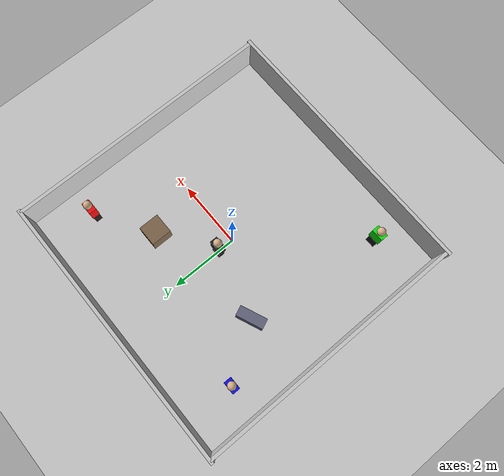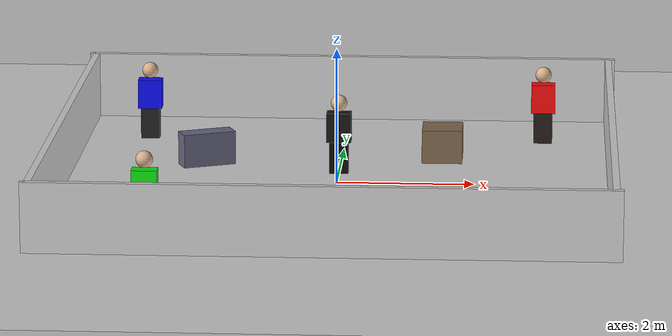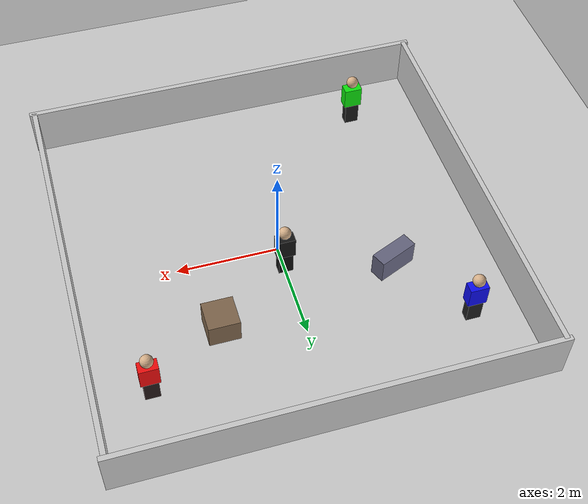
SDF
<?xml version="1.0" ?>
<sdf version="1.6">
  <world name="lab">

    <physics name="1ms" type="ignored">
      <max_step_size>0.001</max_step_size>
      <real_time_factor>1.0</real_time_factor>
    </physics>

    <plugin filename="ignition-gazebo-contact-system"        name="gz::sim::systems::Contact" />
    <plugin filename="ignition-gazebo-imu-system"            name="gz::sim::systems::Imu" />
    <plugin filename="ignition-gazebo-physics-system"        name="gz::sim::systems::Physics" />
    <plugin filename="ignition-gazebo-scene-broadcaster-system" name="gz::sim::systems::SceneBroadcaster" />
    <plugin filename="ignition-gazebo-sensors-system"        name="gz::sim::systems::Sensors" />
    <plugin filename="ignition-gazebo-user-commands-system"  name="gz::sim::systems::UserCommands" />

    <include>
      <uri>https://fuel.gazebosim.org/1.0/OpenRobotics/models/Sun</uri>
    </include>
    <include>
      <uri>https://fuel.gazebosim.org/1.0/OpenRobotics/models/Ground Plane</uri>
    </include>

    <!-- ── WALLS ── -->
    <model name="wall_north">
      <static>true</static><pose>0 4 0.5 0 0 0</pose>
      <link name="link">
        <collision name="c"><geometry><box><size>8.2 0.1 1</size></box></geometry></collision>
        <visual name="v"><geometry><box><size>8.2 0.1 1</size></box></geometry><material><ambient>0.8 0.8 0.8 1</ambient></material></visual>
      </link>
    </model>
    <model name="wall_south">
      <static>true</static><pose>0 -4 0.5 0 0 0</pose>
      <link name="link">
        <collision name="c"><geometry><box><size>8.2 0.1 1</size></box></geometry></collision>
        <visual name="v"><geometry><box><size>8.2 0.1 1</size></box></geometry><material><ambient>0.8 0.8 0.8 1</ambient></material></visual>
      </link>
    </model>
    <model name="wall_east">
      <static>true</static><pose>4 0 0.5 0 0 0</pose>
      <link name="link">
        <collision name="c"><geometry><box><size>0.1 8 1</size></box></geometry></collision>
        <visual name="v"><geometry><box><size>0.1 8 1</size></box></geometry><material><ambient>0.8 0.8 0.8 1</ambient></material></visual>
      </link>
    </model>
    <model name="wall_west">
      <static>true</static><pose>-4 0 0.5 0 0 0</pose>
      <link name="link">
        <collision name="c"><geometry><box><size>0.1 8 1</size></box></geometry></collision>
        <visual name="v"><geometry><box><size>0.1 8 1</size></box></geometry><material><ambient>0.8 0.8 0.8 1</ambient></material></visual>
      </link>
    </model>

    <!-- ── STATIC OBSTACLES ── -->
    <model name="obstacle_1">
      <static>true</static><pose>1.5 1.5 0.25 0 0 0</pose>
      <link name="link">
        <collision name="c"><geometry><box><size>0.6 0.6 0.5</size></box></geometry></collision>
        <visual name="v"><geometry><box><size>0.6 0.6 0.5</size></box></geometry><material><ambient>0.5 0.4 0.3 1</ambient></material></visual>
      </link>
    </model>
    <model name="obstacle_2">
      <static>true</static><pose>-2 1 0.25 0 0 0.4</pose>
      <link name="link">
        <collision name="c"><geometry><box><size>0.8 0.3 0.5</size></box></geometry></collision>
        <visual name="v"><geometry><box><size>0.8 0.3 0.5</size></box></geometry><material><ambient>0.4 0.4 0.5 1</ambient></material></visual>
      </link>
    </model>

    <!-- ── PERSON 1: RED ── -->
    <model name="target_red_cylinder">
      <static>true</static><pose>3.0 2.5 0 0 0 0</pose>
      <link name="link">
        <visual name="legs"><pose>0 0 0.28 0 0 0</pose><geometry><box><size>0.28 0.18 0.5</size></box></geometry><material><ambient>0.15 0.1 0.1 1</ambient><diffuse>0.15 0.1 0.1 1</diffuse></material></visual>
        <visual name="torso"><pose>0 0 0.72 0 0 0</pose><geometry><box><size>0.36 0.22 0.44</size></box></geometry><material><ambient>0.95 0.05 0.05 1</ambient><diffuse>0.95 0.05 0.05 1</diffuse></material></visual>
        <visual name="head"><pose>0 0 1.08 0 0 0</pose><geometry><sphere><radius>0.12</radius></sphere></geometry><material><ambient>0.85 0.7 0.55 1</ambient><diffuse>0.85 0.7 0.55 1</diffuse></material></visual>
        <collision name="collision"><pose>0 0 0.6 0 0 0</pose><geometry><box><size>0.36 0.22 1.2</size></box></geometry></collision>
      </link>
    </model>

    <!-- ── PERSON 2: BLUE ── -->
    <model name="target_blue_box">
      <static>true</static><pose>-3.0 2.5 0 0 0 0</pose>
      <link name="link">
        <visual name="legs"><pose>0 0 0.28 0 0 0</pose><geometry><box><size>0.28 0.18 0.5</size></box></geometry><material><ambient>0.12 0.12 0.12 1</ambient><diffuse>0.12 0.12 0.12 1</diffuse></material></visual>
        <visual name="torso"><pose>0 0 0.72 0 0 0</pose><geometry><box><size>0.36 0.22 0.44</size></box></geometry><material><ambient>0.05 0.05 0.95 1</ambient><diffuse>0.05 0.05 0.95 1</diffuse></material></visual>
        <visual name="head"><pose>0 0 1.08 0 0 0</pose><geometry><sphere><radius>0.12</radius></sphere></geometry><material><ambient>0.85 0.7 0.55 1</ambient><diffuse>0.85 0.7 0.55 1</diffuse></material></visual>
        <collision name="collision"><pose>0 0 0.6 0 0 0</pose><geometry><box><size>0.36 0.22 1.2</size></box></geometry></collision>
      </link>
    </model>

    <!-- ── PERSON 3: GREEN ── -->
    <model name="target_green_cylinder">
      <static>true</static><pose>-2.5 -3.0 0 0 0 0</pose>
      <link name="link">
        <visual name="legs"><pose>0 0 0.28 0 0 0</pose><geometry><box><size>0.28 0.18 0.5</size></box></geometry><material><ambient>0.1 0.1 0.1 1</ambient><diffuse>0.1 0.1 0.1 1</diffuse></material></visual>
        <visual name="torso"><pose>0 0 0.72 0 0 0</pose><geometry><box><size>0.36 0.22 0.44</size></box></geometry><material><ambient>0.05 0.9 0.05 1</ambient><diffuse>0.05 0.9 0.05 1</diffuse></material></visual>
        <visual name="head"><pose>0 0 1.08 0 0 0</pose><geometry><sphere><radius>0.12</radius></sphere></geometry><material><ambient>0.85 0.7 0.55 1</ambient><diffuse>0.85 0.7 0.55 1</diffuse></material></visual>
        <collision name="collision"><pose>0 0 0.6 0 0 0</pose><geometry><box><size>0.36 0.22 1.2</size></box></geometry></collision>
      </link>
    </model>

    <!-- ── PATROLLING BLACK FIGURE (moving obstacle) ── -->
    <model name="patrol_person">
      <pose>0 0.5 0 0 0 0</pose>
      <link name="link">
        <visual name="legs"><pose>0 0 0.28 0 0 0</pose><geometry><box><size>0.28 0.18 0.5</size></box></geometry><material><ambient>0.05 0.05 0.05 1</ambient><diffuse>0.05 0.05 0.05 1</diffuse></material></visual>
        <visual name="torso"><pose>0 0 0.72 0 0 0</pose><geometry><box><size>0.36 0.22 0.44</size></box></geometry><material><ambient>0.08 0.08 0.08 1</ambient><diffuse>0.08 0.08 0.08 1</diffuse></material></visual>
        <visual name="head"><pose>0 0 1.08 0 0 0</pose><geometry><sphere><radius>0.12</radius></sphere></geometry><material><ambient>0.85 0.7 0.55 1</ambient><diffuse>0.85 0.7 0.55 1</diffuse></material></visual>
        <collision name="collision"><pose>0 0 0.6 0 0 0</pose><geometry><box><size>0.36 0.22 1.2</size></box></geometry></collision>
        <inertial><mass>1.0</mass><inertia><ixx>0.1</ixx><iyy>0.1</iyy><izz>0.1</izz></inertia></inertial>
      </link>
      <plugin filename="libignition-gazebo-trajectory-follower-system.so"
              name="ignition::gazebo::systems::TrajectoryFollower">

        <link_name>link</link_name>
        <loop>true</loop>
        <tension>0.8</tension>
        <v>0.4</v>
        <waypoints>
          <waypoint>-2.5 0.5</waypoint>
          <waypoint>2.5 0.5</waypoint>
          <waypoint>2.5 -1.0</waypoint>
          <waypoint>-2.5 -1.0</waypoint>
        </waypoints>
      </plugin>
    </model>

  </world>
</sdf>
